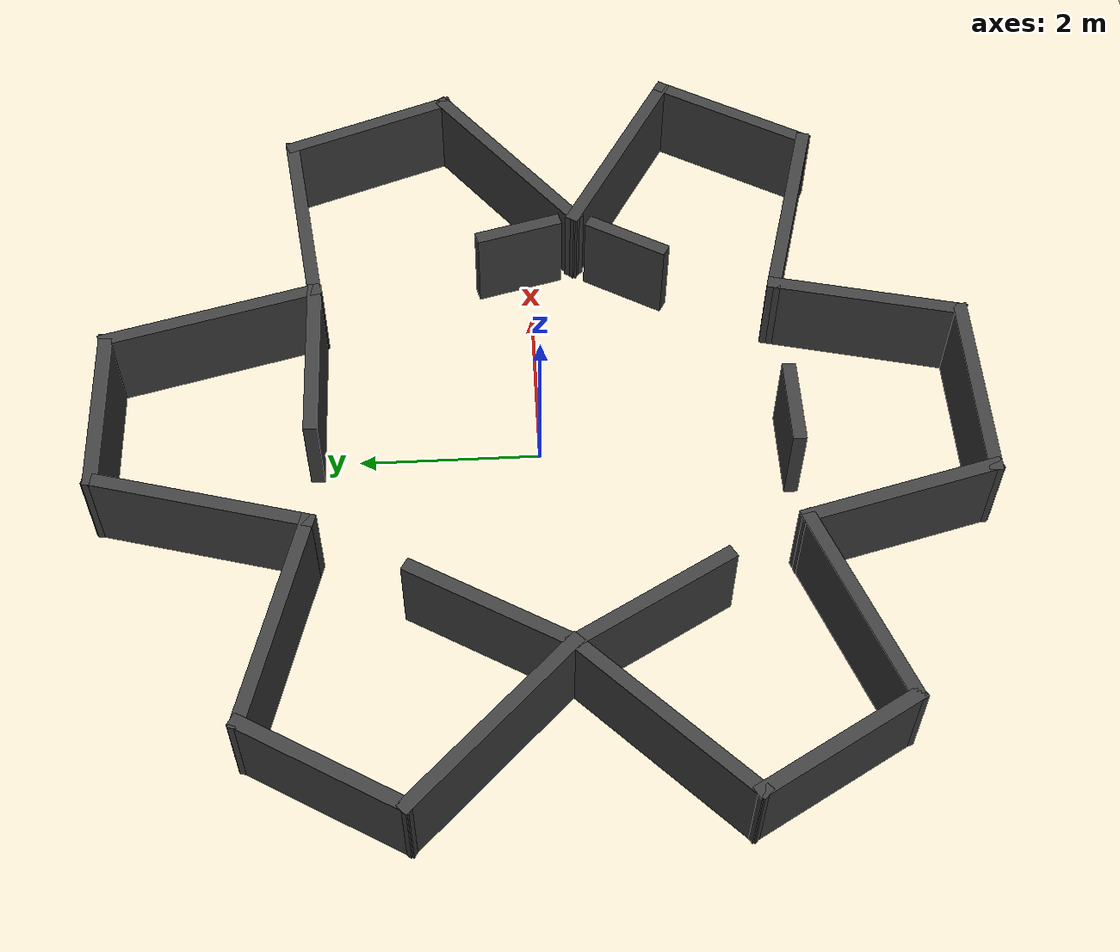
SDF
<?xml version="1.0" ?>

<sdf version="1.8">
  <world name="gazebo_world">
    <physics name='1ms' type='ignored'>
      <max_step_size>0.001</max_step_size>
      <real_time_factor>1</real_time_factor>
      <real_time_update_rate>1000</real_time_update_rate>
    </physics>
    <plugin name='ignition::gazebo::systems::Physics' filename='ignition-gazebo-physics-system'/>
    <plugin name='ignition::gazebo::systems::UserCommands' filename='ignition-gazebo-user-commands-system'/>
    <plugin name='ignition::gazebo::systems::SceneBroadcaster' filename='ignition-gazebo-scene-broadcaster-system'/>
    <plugin filename="ignition-gazebo-sensors-system" name="ignition::gazebo::systems::Sensors">
      <render_engine>ogre2</render_engine>
    </plugin>

    <plugin filename="libignition-gazebo-contact-system.so" name="ignition::gazebo::systems::Contact">
    </plugin>
    <scene>
      <ambient>1.0 1.0 1.0</ambient>
      <background>0.8 0.8 0.8</background>
    </scene>

    <light type="directional" name="sun">
      <cast_shadows>true</cast_shadows>
      <pose>0 0 10 0 0 0</pose>
      <diffuse>0.8 0.8 0.8 1</diffuse>
      <specular>0.2 0.2 0.2 1</specular>
      <attenuation>
        <range>1000</range>
        <constant>0.9</constant>
        <linear>0.01</linear>
        <quadratic>0.001</quadratic>
      </attenuation>
      <direction>-0.5 0.1 -0.9</direction>
    </light>

    <model name="ground_plane">
      <static>true</static>
      <link name="link">
        <collision name="collision">
          <geometry>
            <plane>
              <normal>0 0 1</normal>
              <size>20 20</size>
            </plane>
          </geometry>
        </collision>
        <visual name="visual">
          <geometry>
            <plane>
              <normal>0 0 1</normal>
              <size>20 20</size>
            </plane>
          </geometry>
          <material>
            <ambient>0.94 0.90 0.81 1</ambient>
            <diffuse>0.94 0.90 0.81 1</diffuse>
            <specular>1 1 1 0</specular>
          </material>
        </visual>
      </link>
    </model>

    <include>
      <uri>room_with_walls_star</uri>
      <pose>0.0 0.0 0.0 0 0 0</pose>
    </include>

  </world>
</sdf>

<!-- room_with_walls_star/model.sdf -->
<sdf version='1.6'>
  <model name='room_with_walls_star'>
    <pose>-3.121 1.0945 0 0 -0 0</pose>
    <link name='Wall_12'>
      <collision name='Wall_12_Collision'>
        <geometry>
          <box>
            <size>2.45261 0.15 1.0</size>
          </box>
        </geometry>
        <pose>0 0 0.5 0 -0 0</pose>
      </collision>
      <visual name='Wall_12_Visual'>
        <pose>0 0 0.5 0 -0 0</pose>
        <geometry>
          <box>
            <size>2.45261 0.15 1.0</size>
          </box>
        </geometry>
        <material>
          <ambient>0.25 0.25 0.25 1.0</ambient>
          <diffuse>0.25 0.25 0.25 1.0</diffuse>
          <specular>0.1 0.1 0.1 1.0</specular>
          <emissive>0.0 0.0 0.0 1.0</emissive>
        </material>
        <meta>
          <layer>0</layer>
        </meta>
      </visual>
      <pose>2.681 -2.989 0 0 -0 -0.262253</pose>
    </link>
    <link name='Wall_32'>
      <collision name='Wall_32_Collision'>
        <geometry>
          <box>
            <size>2.5 0.15 1.0</size>
          </box>
        </geometry>
        <pose>0 0 0.5 0 -0 0</pose>
      </collision>
      <visual name='Wall_32_Visual'>
        <pose>0 0 0.5 0 -0 0</pose>
        <geometry>
          <box>
            <size>2.5 0.15 1.0</size>
          </box>
        </geometry>
        <material>
          <ambient>0.25 0.25 0.25 1.0</ambient>
          <diffuse>0.25 0.25 0.25 1.0</diffuse>
          <specular>0.1 0.1 0.1 1.0</specular>
          <emissive>0.0 0.0 0.0 1.0</emissive>
        </material>
        <meta>
          <layer>0</layer>
        </meta>
      </visual>
      <pose>1.3955 3.59 0 0 -0 1.83302</pose>
    </link>
    <link name='Wall_33'>
      <collision name='Wall_33_Collision'>
        <geometry>
          <box>
            <size>2 0.15 1.0</size>
          </box>
        </geometry>
        <pose>0 0 0.5 0 -0 0</pose>
      </collision>
      <visual name='Wall_33_Visual'>
        <pose>0 0 0.5 0 -0 0</pose>
        <geometry>
          <box>
            <size>2 0.15 1.0</size>
          </box>
        </geometry>
        <material>
          <ambient>0.25 0.25 0.25 1.0</ambient>
          <diffuse>0.25 0.25 0.25 1.0</diffuse>
          <specular>0.1 0.1 0.1 1.0</specular>
          <emissive>0.0 0.0 0.0 1.0</emissive>
        </material>
        <meta>
          <layer>0</layer>
        </meta>
      </visual>
      <pose>0.166 4.7245 0 0 -0 3.14159</pose>
    </link>
    <link name='Wall_34'>
      <collision name='Wall_34_Collision'>
        <geometry>
          <box>
            <size>2.5 0.15 1.0</size>
          </box>
        </geometry>
        <pose>0 0 0.5 0 -0 0</pose>
      </collision>
      <visual name='Wall_34_Visual'>
        <pose>0 0 0.5 0 -0 0</pose>
        <geometry>
          <box>
            <size>2.5 0.15 1.0</size>
          </box>
        </geometry>
        <material>
          <ambient>0.25 0.25 0.25 1.0</ambient>
          <diffuse>0.25 0.25 0.25 1.0</diffuse>
          <specular>0.1 0.1 0.1 1.0</specular>
          <emissive>0.0 0.0 0.0 1.0</emissive>
        </material>
        <meta>
          <layer>0</layer>
        </meta>
      </visual>
      <pose>-1.063 3.59 0 0 -0 -1.83261</pose>
    </link>
    <link name='Wall_35'>
      <collision name='Wall_35_Collision'>
        <geometry>
          <box>
            <size>2.5 0.15 1.0</size>
          </box>
        </geometry>
        <pose>0 0 0.5 0 -0 0</pose>
      </collision>
      <visual name='Wall_35_Visual'>
        <pose>0 0 0.5 0 -0 0</pose>
        <geometry>
          <box>
            <size>2.5 0.15 1.0</size>
          </box>
        </geometry>
        <material>
          <ambient>0.25 0.25 0.25 1.0</ambient>
          <diffuse>0.25 0.25 0.25 1.0</diffuse>
          <specular>0.1 0.1 0.1 1.0</specular>
          <emissive>0.0 0.0 0.0 1.0</emissive>
        </material>
        <meta>
          <layer>0</layer>
        </meta>
      </visual>
      <pose>-2.502 2.7595 0 0 -0 2.87989</pose>
    </link>
    <link name='Wall_36'>
      <collision name='Wall_36_Collision'>
        <geometry>
          <box>
            <size>2 0.15 1.0</size>
          </box>
        </geometry>
        <pose>0 0 0.5 0 -0 0</pose>
      </collision>
      <visual name='Wall_36_Visual'>
        <pose>0 0 0.5 0 -0 0</pose>
        <geometry>
          <box>
            <size>2 0.15 1.0</size>
          </box>
        </geometry>
        <material>
          <ambient>0.25 0.25 0.25 1.0</ambient>
          <diffuse>0.25 0.25 0.25 1.0</diffuse>
          <specular>0.1 0.1 0.1 1.0</specular>
          <emissive>0.0 0.0 0.0 1.0</emissive>
        </material>
        <meta>
          <layer>0</layer>
        </meta>
      </visual>
      <pose>-4.0995 2.2625 0 0 -0 -2.09443</pose>
    </link>
    <link name='Wall_37'>
      <collision name='Wall_37_Collision'>
        <geometry>
          <box>
            <size>2.50042 0.15 1.0</size>
          </box>
        </geometry>
        <pose>0 0 0.5 0 -0 0</pose>
      </collision>
      <visual name='Wall_37_Visual'>
        <pose>0 0 0.5 0 -0 0</pose>
        <geometry>
          <box>
            <size>2.50042 0.15 1.0</size>
          </box>
        </geometry>
        <material>
          <ambient>0.25 0.25 0.25 1.0</ambient>
          <diffuse>0.25 0.25 0.25 1.0</diffuse>
          <specular>0.1 0.1 0.1 1.0</specular>
          <emissive>0.0 0.0 0.0 1.0</emissive>
        </material>
        <meta>
          <layer>0</layer>
        </meta>
      </visual>
      <pose>-3.731 0.6305 0 0 -0 -0.785398</pose>
    </link>
    <link name='Wall_38'>
      <collision name='Wall_38_Collision'>
        <geometry>
          <box>
            <size>2.50042 0.15 1.0</size>
          </box>
        </geometry>
        <pose>0 0 0.5 0 -0 0</pose>
      </collision>
      <visual name='Wall_38_Visual'>
        <pose>0 0 0.5 0 -0 0</pose>
        <geometry>
          <box>
            <size>2.50042 0.15 1.0</size>
          </box>
        </geometry>
        <material>
          <ambient>0.25 0.25 0.25 1.0</ambient>
          <diffuse>0.25 0.25 0.25 1.0</diffuse>
          <specular>0.1 0.1 0.1 1.0</specular>
          <emissive>0.0 0.0 0.0 1.0</emissive>
        </material>
        <meta>
          <layer>0</layer>
        </meta>
      </visual>
      <pose>-3.731 -1.0315 0 0 -0 -2.35619</pose>
    </link>
    <link name='Wall_39'>
      <collision name='Wall_39_Collision'>
        <geometry>
          <box>
            <size>2.00001 0.15 1.0</size>
          </box>
        </geometry>
        <pose>0 0 0.5 0 -0 0</pose>
      </collision>
      <visual name='Wall_39_Visual'>
        <pose>0 0 0.5 0 -0 0</pose>
        <geometry>
          <box>
            <size>2.00001 0.15 1.0</size>
          </box>
        </geometry>
        <material>
          <ambient>0.25 0.25 0.25 1.0</ambient>
          <diffuse>0.25 0.25 0.25 1.0</diffuse>
          <specular>0.1 0.1 0.1 1.0</specular>
          <emissive>0.0 0.0 0.0 1.0</emissive>
        </material>
        <meta>
          <layer>0</layer>
        </meta>
      </visual>
      <pose>-4.0995 -2.6635 0 0 -0 -1.04716</pose>
    </link>
    <link name='Wall_40'>
      <collision name='Wall_40_Collision'>
        <geometry>
          <box>
            <size>2.38551 0.15 1.0</size>
          </box>
        </geometry>
        <pose>0 0 0.5 0 -0 0</pose>
      </collision>
      <visual name='Wall_40_Visual'>
        <pose>0 0 0.5 0 -0 0</pose>
        <geometry>
          <box>
            <size>2.38551 0.15 1.0</size>
          </box>
        </geometry>
        <material>
          <ambient>0.25 0.25 0.25 1.0</ambient>
          <diffuse>0.25 0.25 0.25 1.0</diffuse>
          <specular>0.1 0.1 0.1 1.0</specular>
          <emissive>0.0 0.0 0.0 1.0</emissive>
        </material>
        <meta>
          <layer>0</layer>
        </meta>
      </visual>
      <pose>-2.5905 -3.072 0 0 -0 0.358823</pose>
    </link>
    <link name='Wall_42'>
      <collision name='Wall_42_Collision'>
        <geometry>
          <box>
            <size>2 0.15 1.0</size>
          </box>
        </geometry>
        <pose>0 0 0.5 0 -0 0</pose>
      </collision>
      <visual name='Wall_42_Visual'>
        <pose>0 0 0.5 0 -0 0</pose>
        <geometry>
          <box>
            <size>2 0.15 1.0</size>
          </box>
        </geometry>
        <material>
          <ambient>0.25 0.25 0.25 1.0</ambient>
          <diffuse>0.25 0.25 0.25 1.0</diffuse>
          <specular>0.1 0.1 0.1 1.0</specular>
          <emissive>0.0 0.0 0.0 1.0</emissive>
        </material>
        <meta>
          <layer>0</layer>
        </meta>
      </visual>
      <pose>4.2555 -2.4865 0 0 -0 1.04716</pose>
    </link>
    <link name='Wall_43'>
      <collision name='Wall_43_Collision'>
        <geometry>
          <box>
            <size>2.5 0.15 1.0</size>
          </box>
        </geometry>
        <pose>0 0 0.5 0 -0 0</pose>
      </collision>
      <visual name='Wall_43_Visual'>
        <pose>0 0 0.5 0 -0 0</pose>
        <geometry>
          <box>
            <size>2.5 0.15 1.0</size>
          </box>
        </geometry>
        <material>
          <ambient>0.25 0.25 0.25 1.0</ambient>
          <diffuse>0.25 0.25 0.25 1.0</diffuse>
          <specular>0.1 0.1 0.1 1.0</specular>
          <emissive>0.0 0.0 0.0 1.0</emissive>
        </material>
        <meta>
          <layer>0</layer>
        </meta>
      </visual>
      <pose>3.7005 -1.098 0 0 -0 2.61796</pose>
    </link>
    <link name='Wall_44'>
      <collision name='Wall_44_Collision'>
        <geometry>
          <box>
            <size>2.55641 0.15 1.0</size>
          </box>
        </geometry>
        <pose>0 0 0.5 0 -0 0</pose>
      </collision>
      <visual name='Wall_44_Visual'>
        <pose>0 0 0.5 0 -0 0</pose>
        <geometry>
          <box>
            <size>2.55641 0.15 1.0</size>
          </box>
        </geometry>
        <material>
          <ambient>0.25 0.25 0.25 1.0</ambient>
          <diffuse>0.25 0.25 0.25 1.0</diffuse>
          <specular>0.1 0.1 0.1 1.0</specular>
          <emissive>0.0 0.0 0.0 1.0</emissive>
        </material>
        <meta>
          <layer>0</layer>
        </meta>
      </visual>
      <pose>3.63206 0.229088 0 0 -0 0.661981</pose>
    </link>
    <link name='Wall_47'>
      <collision name='Wall_47_Collision'>
        <geometry>
          <box>
            <size>2.38393 0.15 1.0</size>
          </box>
        </geometry>
        <pose>0 0 0.5 0 -0 0</pose>
      </collision>
      <visual name='Wall_47_Visual'>
        <pose>0 0 0.5 0 -0 0</pose>
        <geometry>
          <box>
            <size>2.38393 0.15 1.0</size>
          </box>
        </geometry>
        <material>
          <ambient>0.25 0.25 0.25 1.0</ambient>
          <diffuse>0.25 0.25 0.25 1.0</diffuse>
          <specular>0.1 0.1 0.1 1.0</specular>
          <emissive>0.0 0.0 0.0 1.0</emissive>
        </material>
        <meta>
          <layer>0</layer>
        </meta>
      </visual>
      <pose>2.80656 2.60759 0 0 -0 0.136586</pose>
    </link>
    <link name='Wall_49'>
      <collision name='Wall_49_Collision'>
        <geometry>
          <box>
            <size>2.06152 0.15 1.0</size>
          </box>
        </geometry>
        <pose>0 0 0.5 0 -0 0</pose>
      </collision>
      <visual name='Wall_49_Visual'>
        <pose>0 0 0.5 0 -0 0</pose>
        <geometry>
          <box>
            <size>2.06152 0.15 1.0</size>
          </box>
        </geometry>
        <material>
          <ambient>0.25 0.25 0.25 1.0</ambient>
          <diffuse>0.25 0.25 0.25 1.0</diffuse>
          <specular>0.1 0.1 0.1 1.0</specular>
          <emissive>0.0 0.0 0.0 1.0</emissive>
        </material>
        <meta>
          <layer>0</layer>
        </meta>
      </visual>
      <pose>4.24712 1.84897 0 0 -0 -1.2138</pose>
    </link>
    <link name='Wall_51'>
      <collision name='Wall_51_Collision'>
        <geometry>
          <box>
            <size>2 0.15 1.0</size>
          </box>
        </geometry>
        <pose>0 0 0.5 0 -0 0</pose>
      </collision>
      <visual name='Wall_51_Visual'>
        <pose>0 0 0.5 0 -0 0</pose>
        <geometry>
          <box>
            <size>2 0.15 1.0</size>
          </box>
        </geometry>
        <material>
          <ambient>0.25 0.25 0.25 1.0</ambient>
          <diffuse>0.25 0.25 0.25 1.0</diffuse>
          <specular>0.1 0.1 0.1 1.0</specular>
          <emissive>0.0 0.0 0.0 1.0</emissive>
        </material>
        <meta>
          <layer>0</layer>
        </meta>
      </visual>
      <pose>-2.4375 0.6005 0 0 -0 1.04716</pose>
    </link>
    <link name='Wall_54'>
      <collision name='Wall_54_Collision'>
        <geometry>
          <box>
            <size>2 0.15 1.0</size>
          </box>
        </geometry>
        <pose>0 0 0.5 0 -0 0</pose>
      </collision>
      <visual name='Wall_54_Visual'>
        <pose>0 0 0.5 0 -0 0</pose>
        <geometry>
          <box>
            <size>2 0.15 1.0</size>
          </box>
        </geometry>
        <material>
          <ambient>0.25 0.25 0.25 1.0</ambient>
          <diffuse>0.25 0.25 0.25 1.0</diffuse>
          <specular>0.1 0.1 0.1 1.0</specular>
          <emissive>0.0 0.0 0.0 1.0</emissive>
        </material>
        <meta>
          <layer>0</layer>
        </meta>
      </visual>
      <pose>0.775 2.4555 0 0 -0 3.14159</pose>
    </link>
    <link name='Wall_56'>
      <collision name='Wall_56_Collision'>
        <geometry>
          <box>
            <size>2 0.15 1.0</size>
          </box>
        </geometry>
        <pose>0 0 0.5 0 -0 0</pose>
      </collision>
      <visual name='Wall_56_Visual'>
        <pose>0 0 0.5 0 -0 0</pose>
        <geometry>
          <box>
            <size>2 0.15 1.0</size>
          </box>
        </geometry>
        <material>
          <ambient>0.25 0.25 0.25 1.0</ambient>
          <diffuse>0.25 0.25 0.25 1.0</diffuse>
          <specular>0.1 0.1 0.1 1.0</specular>
          <emissive>0.0 0.0 0.0 1.0</emissive>
        </material>
        <meta>
          <layer>0</layer>
        </meta>
      </visual>
      <pose>-2.4375 -1.0015 0 0 -0 -1.04716</pose>
    </link>
    <link name='Wall_58'>
      <collision name='Wall_58_Collision'>
        <geometry>
          <box>
            <size>1.0 0.15 1.0</size>
          </box>
        </geometry>
        <pose>0 0 0.5 0 -0 0</pose>
      </collision>
      <visual name='Wall_58_Visual'>
        <pose>0 0 0.5 0 -0 0</pose>
        <geometry>
          <box>
            <size>1.0 0.15 1.0</size>
          </box>
        </geometry>
        <material>
          <ambient>0.25 0.25 0.25 1.0</ambient>
          <diffuse>0.25 0.25 0.25 1.0</diffuse>
          <specular>0.1 0.1 0.1 1.0</specular>
          <emissive>0.0 0.0 0.0 1.0</emissive>
        </material>
        <meta>
          <layer>0</layer>
        </meta>
      </visual>
      <pose>2.5085 0.1415 0 0 -0 1.83231</pose>
    </link>
    <link name='Wall_60'>
      <collision name='Wall_60_Collision'>
        <geometry>
          <box>
            <size>1 0.15 1.0</size>
          </box>
        </geometry>
        <pose>0 0 0.5 0 -0 0</pose>
      </collision>
      <visual name='Wall_60_Visual'>
        <pose>0 0 0.5 0 -0 0</pose>
        <geometry>
          <box>
            <size>1 0.15 1.0</size>
          </box>
        </geometry>
        <material>
          <ambient>0.25 0.25 0.25 1.0</ambient>
          <diffuse>0.25 0.25 0.25 1.0</diffuse>
          <specular>0.1 0.1 0.1 1.0</specular>
          <emissive>0.0 0.0 0.0 1.0</emissive>
        </material>
        <meta>
          <layer>0</layer>
        </meta>
      </visual>
      <pose>-0.084 -2.7105 0 0 -0 0</pose>
    </link>
    <link name='Wall_62'>
      <collision name='Wall_62_Collision'>
        <geometry>
          <box>
            <size>1.0 0.15 1.0</size>
          </box>
        </geometry>
        <pose>0 0 0.5 0 -0 0</pose>
      </collision>
      <visual name='Wall_62_Visual'>
        <pose>0 0 0.5 0 -0 0</pose>
        <geometry>
          <box>
            <size>1.0 0.15 1.0</size>
          </box>
        </geometry>
        <material>
          <ambient>0.25 0.25 0.25 1.0</ambient>
          <diffuse>0.25 0.25 0.25 1.0</diffuse>
          <specular>0.1 0.1 0.1 1.0</specular>
          <emissive>0.0 0.0 0.0 1.0</emissive>
        </material>
        <meta>
          <layer>0</layer>
        </meta>
      </visual>
      <pose>2.3455 -1.095 0 0 -0 -2.09444</pose>
    </link>

    <link name='Wall_83'>
      <collision name='Wall_83_Collision'>
        <geometry>
          <box>
            <size>2.25 0.15 1.0</size>
          </box>
        </geometry>
        <pose>0 0 0.5 0 -0 0</pose>
      </collision>
      <visual name='Wall_83_Visual'>
        <pose>0 0 0.5 0 -0 0</pose>
        <geometry>
          <box>
            <size>2.25 0.15 1.0</size>
          </box>
        </geometry>
        <material>
          <ambient>0.25 0.25 0.25 1.0</ambient>
          <diffuse>0.25 0.25 0.25 1.0</diffuse>
          <specular>0.1 0.1 0.1 1.0</specular>
          <emissive>0.0 0.0 0.0 1.0</emissive>
        </material>
        <meta>
          <layer>0</layer>
        </meta>
      </visual>
      <pose>-1.272 -3.6935 0 0 -0 -1.30872</pose>
    </link>
    <link name='Wall_85'>
      <collision name='Wall_85_Collision'>
        <geometry>
          <box>
            <size>2.25 0.15 1.0</size>
          </box>
        </geometry>
        <pose>0 0 0.5 0 -0 0</pose>
      </collision>
      <visual name='Wall_85_Visual'>
        <pose>0 0 0.5 0 -0 0</pose>
        <geometry>
          <box>
            <size>2.25 0.15 1.0</size>
          </box>
        </geometry>
        <material>
          <ambient>0.25 0.25 0.25 1.0</ambient>
          <diffuse>0.25 0.25 0.25 1.0</diffuse>
          <specular>0.1 0.1 0.1 1.0</specular>
          <emissive>0.0 0.0 0.0 1.0</emissive>
        </material>
        <meta>
          <layer>0</layer>
        </meta>
      </visual>
      <pose>0.05 -4.7075 0 0 -0 0</pose>
    </link>
    <link name='Wall_87'>
      <collision name='Wall_87_Collision'>
        <geometry>
          <box>
            <size>2.22086 0.15 1.0</size>
          </box>
        </geometry>
        <pose>0 0 0.5 0 -0 0</pose>
      </collision>
      <visual name='Wall_87_Visual'>
        <pose>0 0 0.5 0 -0 0</pose>
        <geometry>
          <box>
            <size>2.22086 0.15 1.0</size>
          </box>
        </geometry>
        <material>
          <ambient>0.25 0.25 0.25 1.0</ambient>
          <diffuse>0.25 0.25 0.25 1.0</diffuse>
          <specular>0.1 0.1 0.1 1.0</specular>
          <emissive>0.0 0.0 0.0 1.0</emissive>
        </material>
        <meta>
          <layer>0</layer>
        </meta>
      </visual>
      <pose>1.3345 -3.699 0 0 -0 -1.79926</pose>
    </link>
    <static>1</static>
  </model>
</sdf>
